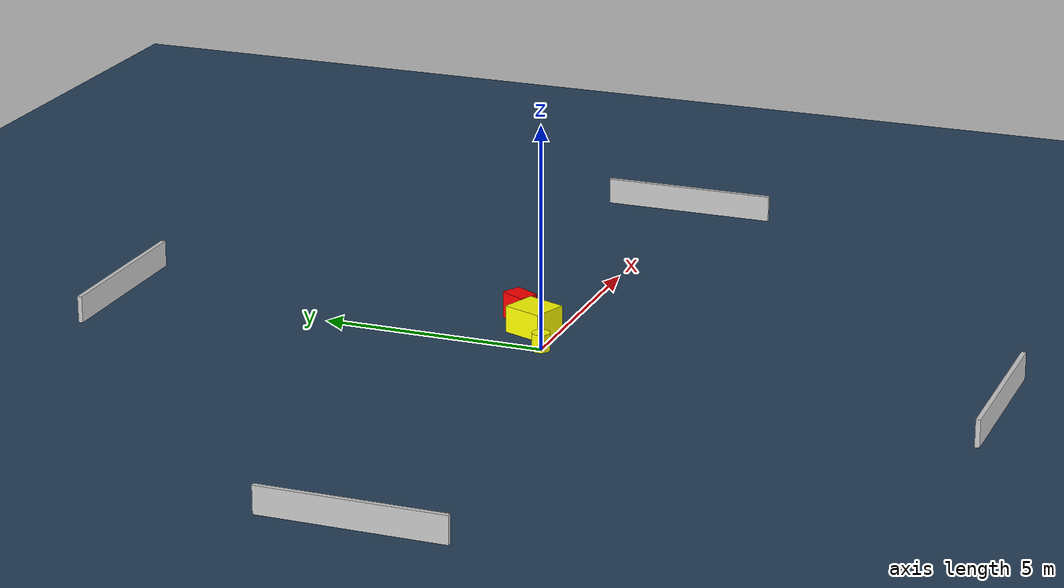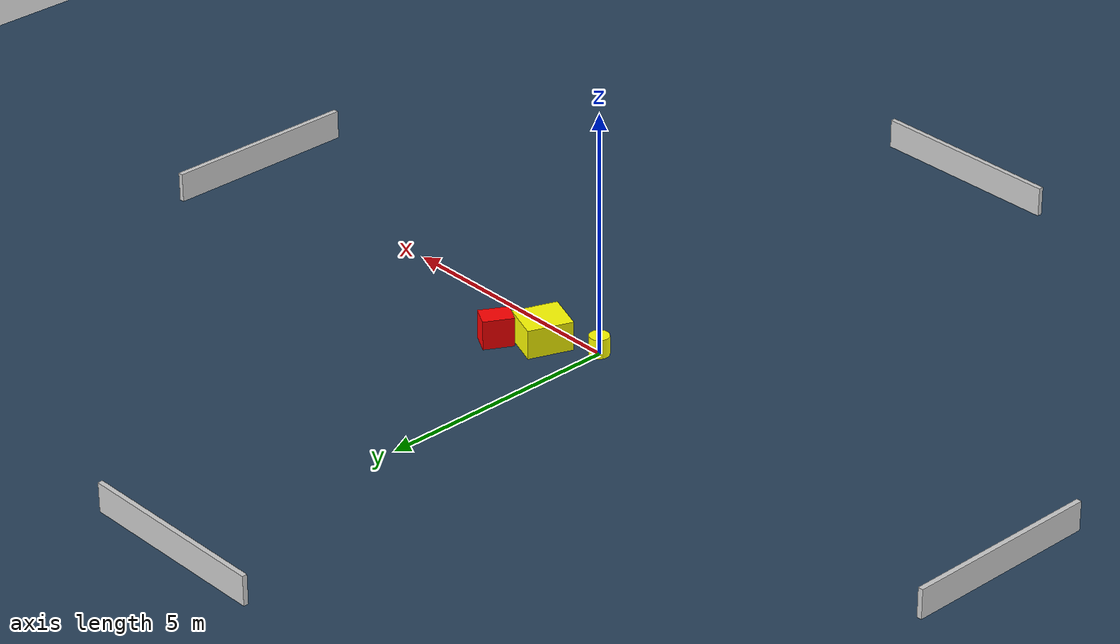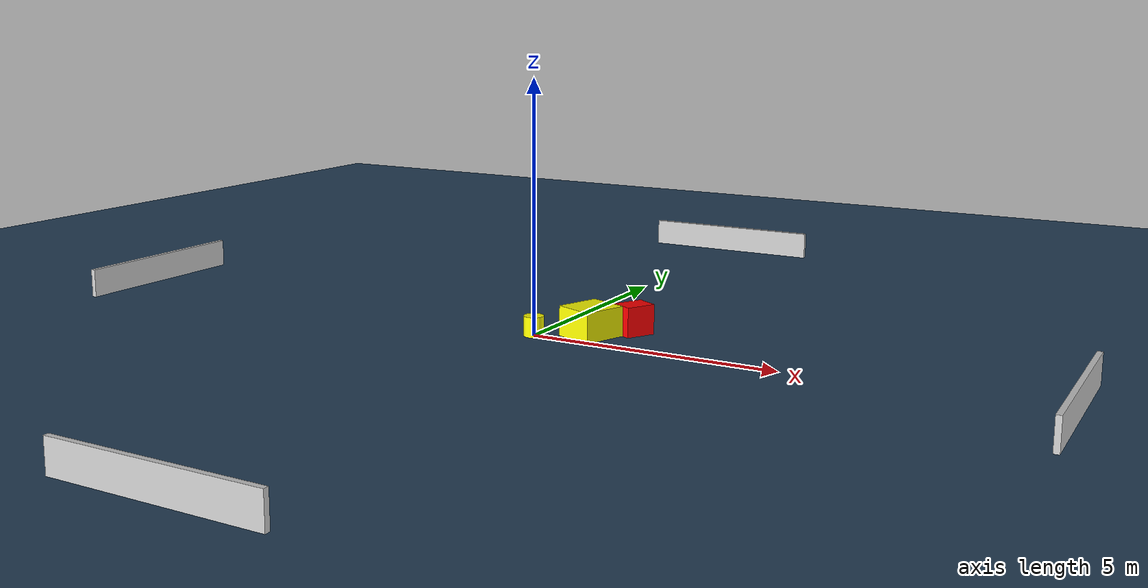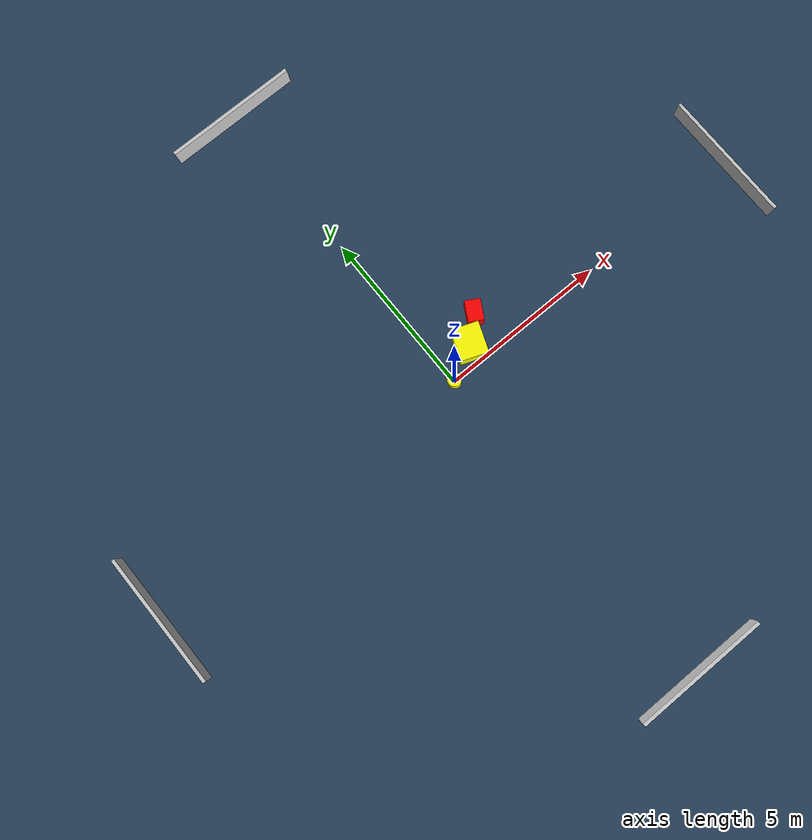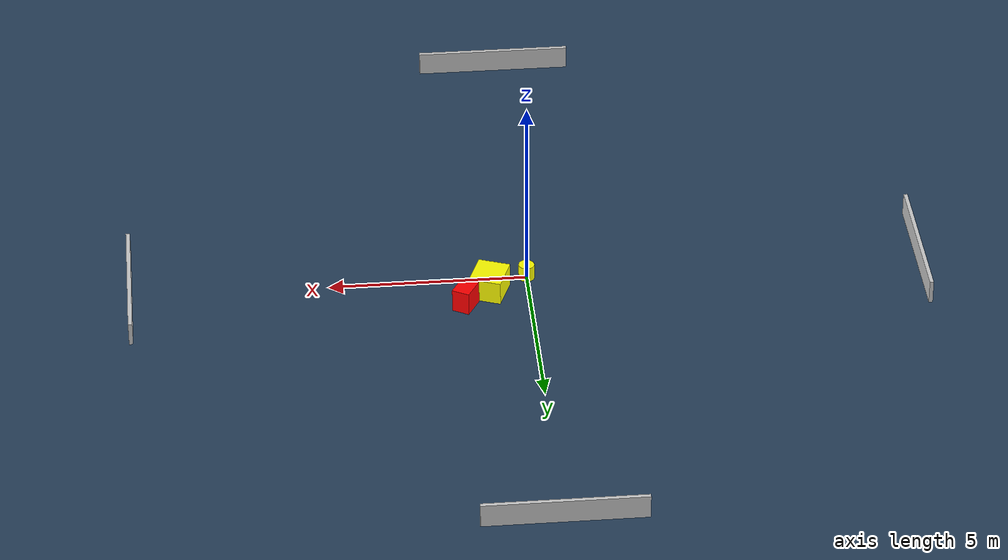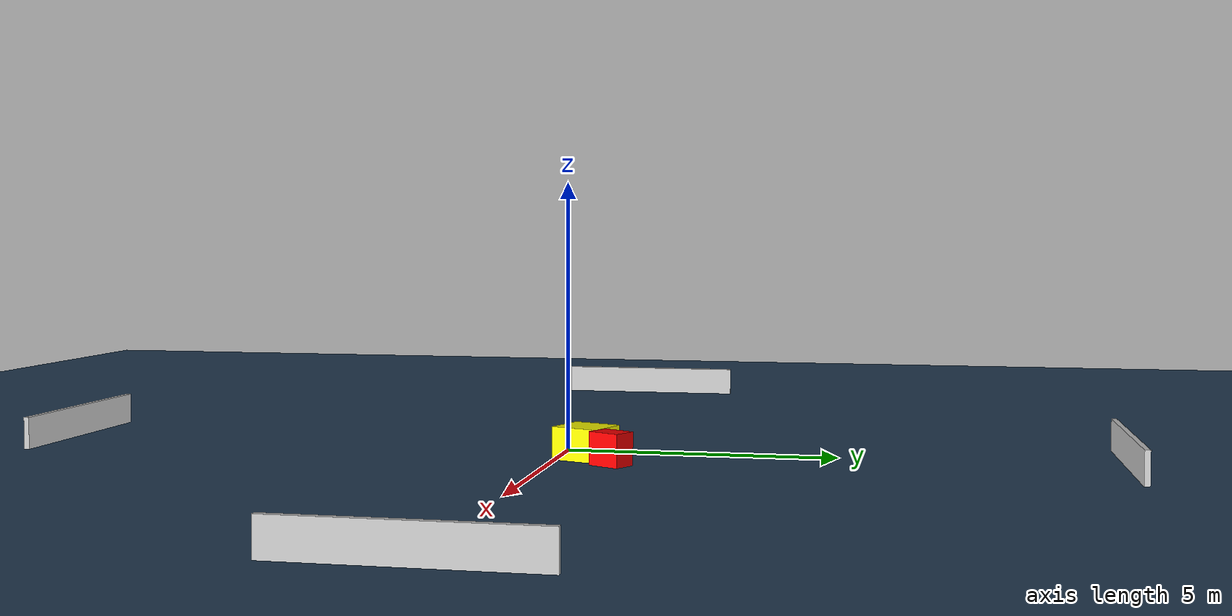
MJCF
<?xml version="1.0" ?>
<mujoco model="generated_environment">
  <option timestep="0.01" integrator="RK4" cone="elliptic"/>
  <default>
    <geom density="1"/>
  </default>
  <asset>
    <texture builtin="gradient" height="3072" name="skybox" rgb1="0.3 0.5 0.7" rgb2="0 0 0" type="skybox" width="512"/>
    <texture builtin="checker" height="300" name="groundplane" rgb1="0.2 0.3 0.4" rgb2="0.1 0.2 0.3" type="2d" width="300"/>
    <material name="groundplane" reflectance="0.2" texrepeat="5 5" texture="groundplane"/>
  </asset>
  <worldbody>
    <light dir="0 0 -1" directional="true" pos="0 0 1.5"/>
    <geom condim="3" friction="0.5 0.005 0.001" material="groundplane" name="floor" pos="0 0 0" size="0 0 0.05" type="plane"/>
    <body name="walls">
      <geom name="wall_1" condim="4" pos="-10.0 0.0 0.3" rgba="0.800000011920929 0.800000011920929 0.800000011920929 1.0" size="0.05 2.0 0.3" type="box"/>
      <geom name="wall_2" condim="4" pos="10.0 0.0 0.3" rgba="0.800000011920929 0.800000011920929 0.800000011920929 1.0" size="0.05 2.0 0.3" type="box"/>
      <geom name="wall_3" condim="4" pos="0.0 -10.0 0.3" rgba="0.800000011920929 0.800000011920929 0.800000011920929 1.0" size="2.0 0.05 0.3" type="box"/>
      <geom name="wall_4" condim="4" pos="0.0 10.0 0.3" rgba="0.800000011920929 0.800000011920929 0.800000011920929 1.0" size="2.0 0.05 0.3" type="box"/>
    </body>
    <body name="robot">
      <joint name="joint_x" type="slide" pos="0 0 0" axis="1 0 0"/>
      <joint name="joint_y" type="slide" pos="0 0 0" axis="0 1 0"/>
      <geom name="robot" type="cylinder" pos="0.0 0.0 0.2" size="0.2 0.2 0.0" mass="5.0" friction="1.0 0.005 0.0001" condim="4" rgba="1.0 1.0 0.0 1.0"/>
    </body>
    <body name="obstacle_1_movable">
      <geom name="obstacle_1_movable" condim="4" pos="0.9769761367279252 0.5324836771723627 0.3" euler="0 0 159.18710164311443" friction="0.0 0.005 0.001" rgba="1.0 1.0 0.0 1.0" size="0.41010984198479256 0.45880990738348015 0.3" type="box" mass="0.1"/>
      <joint type="free"/>
    </body>
    <body name="obstacle_2_static">
      <geom name="obstacle_2_static" condim="4" pos="1.6285298631673657 1.112086783320834 0.3" euler="0 0 60.800062379603595" friction="0.0 0.005 0.001" rgba="1.0 0.0 0.0 1.0" size="0.30863173178258746 0.2279876574998097 0.3" type="box"/>
    </body>
  </worldbody>
  <actuator>
    <motor name="actuator_x" joint="joint_x" gear="1" ctrlrange="-1 1"/>
    <motor name="actuator_y" joint="joint_y" gear="1" ctrlrange="-1 1"/>
  </actuator>
</mujoco>
